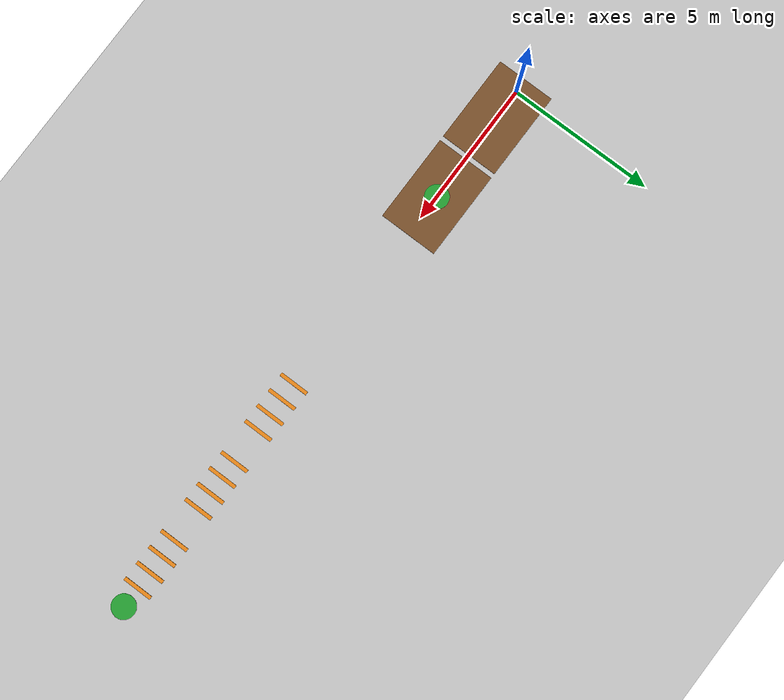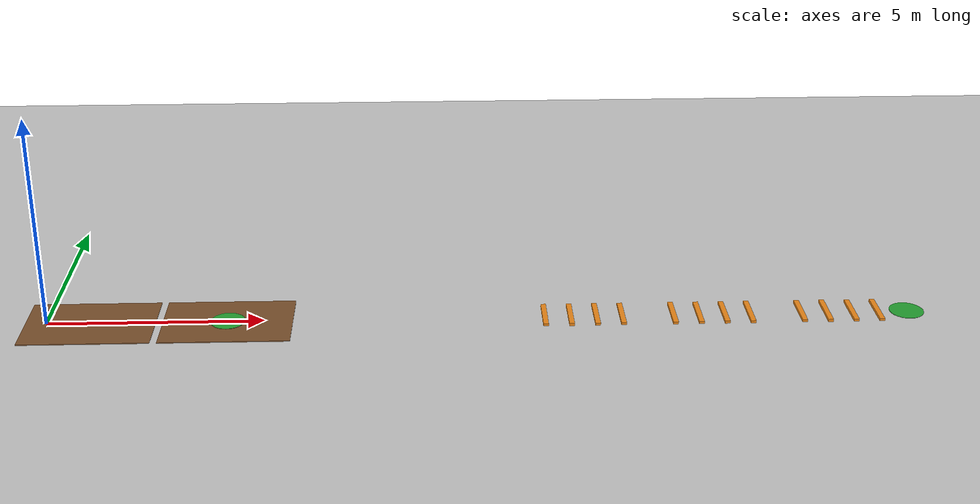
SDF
<?xml version="1.0" ?>
<!-- 由 omni_world.py 自动生成: scene=mixed seed=2 -->
<sdf version="1.5">
  <world name="mixed">
    <physics type="ode">
      <type>world</type>
      <max_step_size>0.001</max_step_size>
      <real_time_update_rate>1000</real_time_update_rate>
      <iters>500</iters>
    </physics>
    <include><uri>model://sun</uri></include>
    <include><uri>model://ground_plane</uri></include>
    <model name="ground_a">
      <static>true</static>
      <pose>1.000 0.000 -0.025 0.0000 0.0000 0.0000</pose>
      <link name="link">
        <collision name="collision">
          <geometry><box><size>3.000 2.000 0.050</size></box></geometry>
          <surface><friction><ode><mu>1.0</mu><mu2>1.0</mu2></ode></friction></surface>
        </collision>
        <visual name="visual">
          <geometry><box><size>3.000 2.000 0.050</size></box></geometry>
          <material><script><uri>file://media/materials/scripts/gazebo.material</uri>
            <name>Gazebo/Brown</name></script></material>
        </visual>
      </link>
    </model>
    <model name="ground_b">
      <static>true</static>
      <pose>4.160 0.000 -0.025 0.0000 0.0000 0.0000</pose>
      <link name="link">
        <collision name="collision">
          <geometry><box><size>3.000 2.000 0.050</size></box></geometry>
          <surface><friction><ode><mu>1.0</mu><mu2>1.0</mu2></ode></friction></surface>
        </collision>
        <visual name="visual">
          <geometry><box><size>3.000 2.000 0.050</size></box></geometry>
          <material><script><uri>file://media/materials/scripts/gazebo.material</uri>
            <name>Gazebo/Brown</name></script></material>
        </visual>
      </link>
    </model>
    <model name="goal">
      <static>true</static>
      <pose>4.160 0.000 0.005 0 0 0</pose>
      <link name="link">
        <visual name="visual">
          <geometry><cylinder><radius>0.400</radius><length>0.01</length></cylinder></geometry>
          <material><script><uri>file://media/materials/scripts/gazebo.material</uri>
            <name>Gazebo/Green</name></script></material>
        </visual>
      </link>
    </model>
    <model name="ground_a">
      <static>true</static>
      <pose>1.000 0.000 -0.025 0.0000 0.0000 0.0000</pose>
      <link name="link">
        <collision name="collision">
          <geometry><box><size>3.000 2.000 0.050</size></box></geometry>
          <surface><friction><ode><mu>1.0</mu><mu2>1.0</mu2></ode></friction></surface>
        </collision>
        <visual name="visual">
          <geometry><box><size>3.000 2.000 0.050</size></box></geometry>
          <material><script><uri>file://media/materials/scripts/gazebo.material</uri>
            <name>Gazebo/Brown</name></script></material>
        </visual>
      </link>
    </model>
    <model name="ground_b">
      <static>true</static>
      <pose>4.160 0.000 -0.025 0.0000 0.0000 0.0000</pose>
      <link name="link">
        <collision name="collision">
          <geometry><box><size>3.000 2.000 0.050</size></box></geometry>
          <surface><friction><ode><mu>1.0</mu><mu2>1.0</mu2></ode></friction></surface>
        </collision>
        <visual name="visual">
          <geometry><box><size>3.000 2.000 0.050</size></box></geometry>
          <material><script><uri>file://media/materials/scripts/gazebo.material</uri>
            <name>Gazebo/Brown</name></script></material>
        </visual>
      </link>
    </model>
    <model name="goal">
      <static>true</static>
      <pose>4.160 0.000 0.005 0 0 0</pose>
      <link name="link">
        <visual name="visual">
          <geometry><cylinder><radius>0.400</radius><length>0.01</length></cylinder></geometry>
          <material><script><uri>file://media/materials/scripts/gazebo.material</uri>
            <name>Gazebo/Green</name></script></material>
        </visual>
      </link>
    </model>
    <model name="mx_bump_2_0">
      <static>true</static>
      <pose>11.500 0.000 0.033 0.0000 0.0000 0.0000</pose>
      <link name="link">
        <collision name="collision">
          <geometry><box><size>0.120 1.000 0.065</size></box></geometry>
          <surface><friction><ode><mu>1.0</mu><mu2>1.0</mu2></ode></friction></surface>
        </collision>
        <visual name="visual">
          <geometry><box><size>0.120 1.000 0.065</size></box></geometry>
          <material><script><uri>file://media/materials/scripts/gazebo.material</uri>
            <name>Gazebo/Orange</name></script></material>
        </visual>
      </link>
    </model>
    <model name="mx_bump_2_1">
      <static>true</static>
      <pose>12.100 0.000 0.033 0.0000 0.0000 0.0000</pose>
      <link name="link">
        <collision name="collision">
          <geometry><box><size>0.120 1.000 0.065</size></box></geometry>
          <surface><friction><ode><mu>1.0</mu><mu2>1.0</mu2></ode></friction></surface>
        </collision>
        <visual name="visual">
          <geometry><box><size>0.120 1.000 0.065</size></box></geometry>
          <material><script><uri>file://media/materials/scripts/gazebo.material</uri>
            <name>Gazebo/Orange</name></script></material>
        </visual>
      </link>
    </model>
    <model name="mx_bump_2_2">
      <static>true</static>
      <pose>12.700 0.000 0.033 0.0000 0.0000 0.0000</pose>
      <link name="link">
        <collision name="collision">
          <geometry><box><size>0.120 1.000 0.065</size></box></geometry>
          <surface><friction><ode><mu>1.0</mu><mu2>1.0</mu2></ode></friction></surface>
        </collision>
        <visual name="visual">
          <geometry><box><size>0.120 1.000 0.065</size></box></geometry>
          <material><script><uri>file://media/materials/scripts/gazebo.material</uri>
            <name>Gazebo/Orange</name></script></material>
        </visual>
      </link>
    </model>
    <model name="mx_bump_2_3">
      <static>true</static>
      <pose>13.300 0.000 0.033 0.0000 0.0000 0.0000</pose>
      <link name="link">
        <collision name="collision">
          <geometry><box><size>0.120 1.000 0.065</size></box></geometry>
          <surface><friction><ode><mu>1.0</mu><mu2>1.0</mu2></ode></friction></surface>
        </collision>
        <visual name="visual">
          <geometry><box><size>0.120 1.000 0.065</size></box></geometry>
          <material><script><uri>file://media/materials/scripts/gazebo.material</uri>
            <name>Gazebo/Orange</name></script></material>
        </visual>
      </link>
    </model>
    <model name="mx_bump_3_0">
      <static>true</static>
      <pose>14.500 0.000 0.033 0.0000 0.0000 0.0000</pose>
      <link name="link">
        <collision name="collision">
          <geometry><box><size>0.120 1.000 0.065</size></box></geometry>
          <surface><friction><ode><mu>1.0</mu><mu2>1.0</mu2></ode></friction></surface>
        </collision>
        <visual name="visual">
          <geometry><box><size>0.120 1.000 0.065</size></box></geometry>
          <material><script><uri>file://media/materials/scripts/gazebo.material</uri>
            <name>Gazebo/Orange</name></script></material>
        </visual>
      </link>
    </model>
    <model name="mx_bump_3_1">
      <static>true</static>
      <pose>15.100 0.000 0.033 0.0000 0.0000 0.0000</pose>
      <link name="link">
        <collision name="collision">
          <geometry><box><size>0.120 1.000 0.065</size></box></geometry>
          <surface><friction><ode><mu>1.0</mu><mu2>1.0</mu2></ode></friction></surface>
        </collision>
        <visual name="visual">
          <geometry><box><size>0.120 1.000 0.065</size></box></geometry>
          <material><script><uri>file://media/materials/scripts/gazebo.material</uri>
            <name>Gazebo/Orange</name></script></material>
        </visual>
      </link>
    </model>
    <model name="mx_bump_3_2">
      <static>true</static>
      <pose>15.700 0.000 0.033 0.0000 0.0000 0.0000</pose>
      <link name="link">
        <collision name="collision">
          <geometry><box><size>0.120 1.000 0.065</size></box></geometry>
          <surface><friction><ode><mu>1.0</mu><mu2>1.0</mu2></ode></friction></surface>
        </collision>
        <visual name="visual">
          <geometry><box><size>0.120 1.000 0.065</size></box></geometry>
          <material><script><uri>file://media/materials/scripts/gazebo.material</uri>
            <name>Gazebo/Orange</name></script></material>
        </visual>
      </link>
    </model>
    <model name="mx_bump_3_3">
      <static>true</static>
      <pose>16.300 0.000 0.033 0.0000 0.0000 0.0000</pose>
      <link name="link">
        <collision name="collision">
          <geometry><box><size>0.120 1.000 0.065</size></box></geometry>
          <surface><friction><ode><mu>1.0</mu><mu2>1.0</mu2></ode></friction></surface>
        </collision>
        <visual name="visual">
          <geometry><box><size>0.120 1.000 0.065</size></box></geometry>
          <material><script><uri>file://media/materials/scripts/gazebo.material</uri>
            <name>Gazebo/Orange</name></script></material>
        </visual>
      </link>
    </model>
    <model name="mx_bump_4_0">
      <static>true</static>
      <pose>17.500 0.000 0.033 0.0000 0.0000 0.0000</pose>
      <link name="link">
        <collision name="collision">
          <geometry><box><size>0.120 1.000 0.065</size></box></geometry>
          <surface><friction><ode><mu>1.0</mu><mu2>1.0</mu2></ode></friction></surface>
        </collision>
        <visual name="visual">
          <geometry><box><size>0.120 1.000 0.065</size></box></geometry>
          <material><script><uri>file://media/materials/scripts/gazebo.material</uri>
            <name>Gazebo/Orange</name></script></material>
        </visual>
      </link>
    </model>
    <model name="mx_bump_4_1">
      <static>true</static>
      <pose>18.100 0.000 0.033 0.0000 0.0000 0.0000</pose>
      <link name="link">
        <collision name="collision">
          <geometry><box><size>0.120 1.000 0.065</size></box></geometry>
          <surface><friction><ode><mu>1.0</mu><mu2>1.0</mu2></ode></friction></surface>
        </collision>
        <visual name="visual">
          <geometry><box><size>0.120 1.000 0.065</size></box></geometry>
          <material><script><uri>file://media/materials/scripts/gazebo.material</uri>
            <name>Gazebo/Orange</name></script></material>
        </visual>
      </link>
    </model>
    <model name="mx_bump_4_2">
      <static>true</static>
      <pose>18.700 0.000 0.033 0.0000 0.0000 0.0000</pose>
      <link name="link">
        <collision name="collision">
          <geometry><box><size>0.120 1.000 0.065</size></box></geometry>
          <surface><friction><ode><mu>1.0</mu><mu2>1.0</mu2></ode></friction></surface>
        </collision>
        <visual name="visual">
          <geometry><box><size>0.120 1.000 0.065</size></box></geometry>
          <material><script><uri>file://media/materials/scripts/gazebo.material</uri>
            <name>Gazebo/Orange</name></script></material>
        </visual>
      </link>
    </model>
    <model name="mx_bump_4_3">
      <static>true</static>
      <pose>19.300 0.000 0.033 0.0000 0.0000 0.0000</pose>
      <link name="link">
        <collision name="collision">
          <geometry><box><size>0.120 1.000 0.065</size></box></geometry>
          <surface><friction><ode><mu>1.0</mu><mu2>1.0</mu2></ode></friction></surface>
        </collision>
        <visual name="visual">
          <geometry><box><size>0.120 1.000 0.065</size></box></geometry>
          <material><script><uri>file://media/materials/scripts/gazebo.material</uri>
            <name>Gazebo/Orange</name></script></material>
        </visual>
      </link>
    </model>
    <model name="goal">
      <static>true</static>
      <pose>20.000 0.000 0.005 0 0 0</pose>
      <link name="link">
        <visual name="visual">
          <geometry><cylinder><radius>0.400</radius><length>0.01</length></cylinder></geometry>
          <material><script><uri>file://media/materials/scripts/gazebo.material</uri>
            <name>Gazebo/Green</name></script></material>
        </visual>
      </link>
    </model>

  </world>
</sdf>
